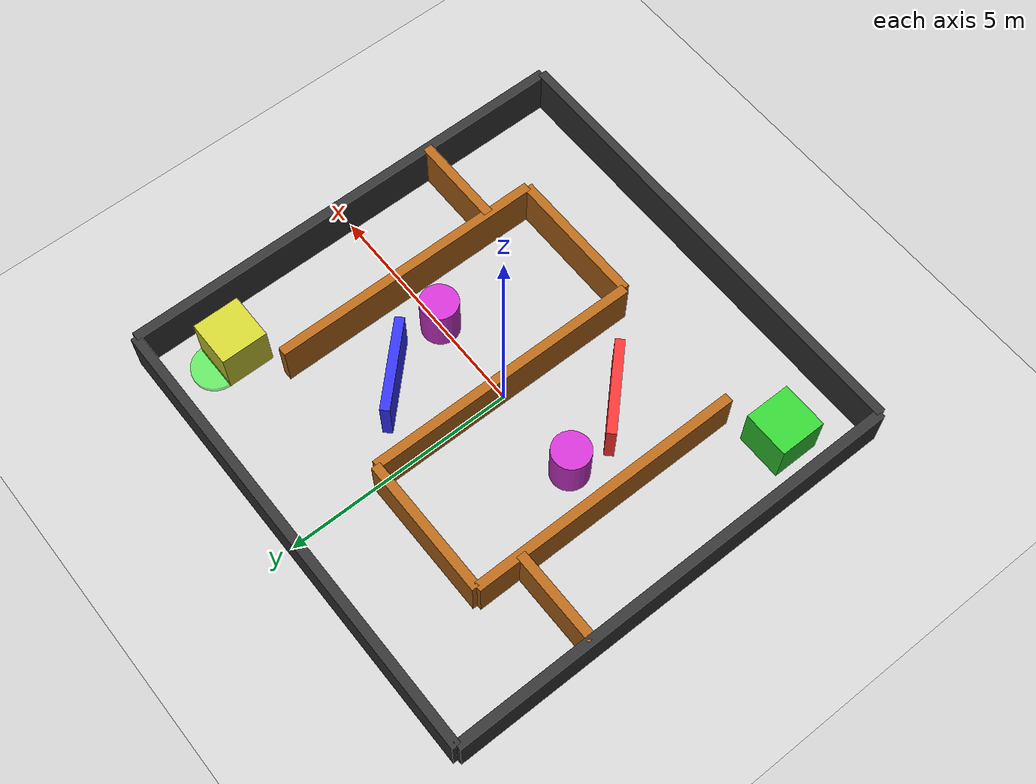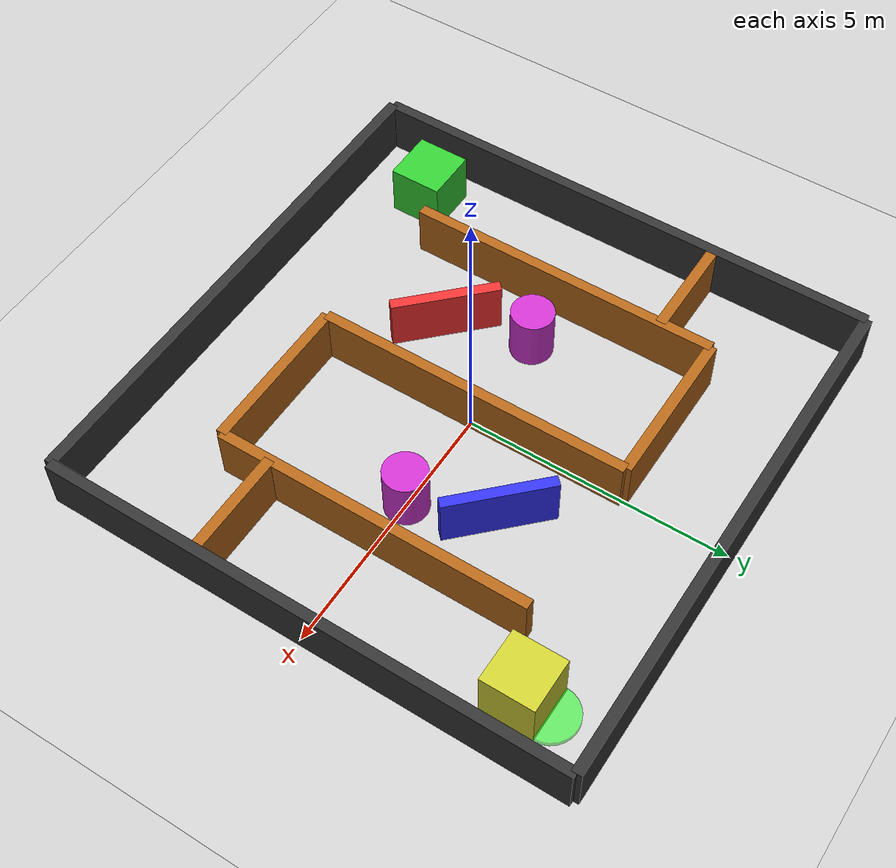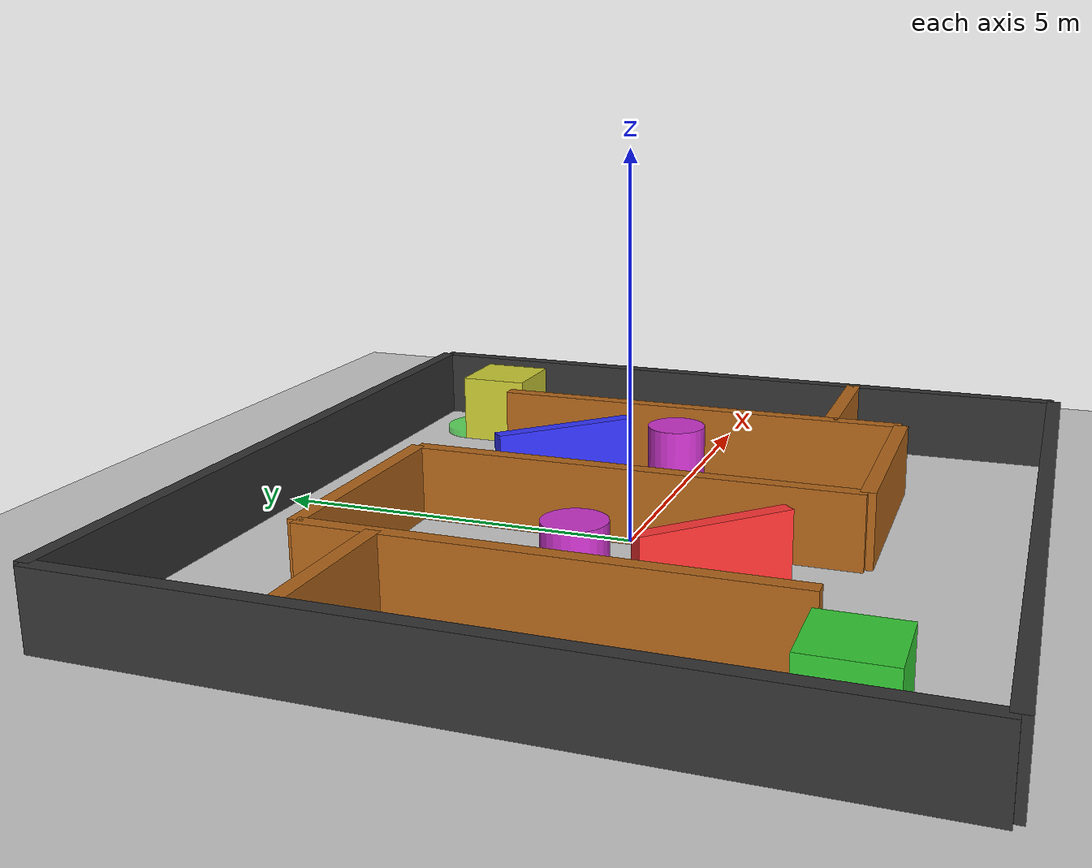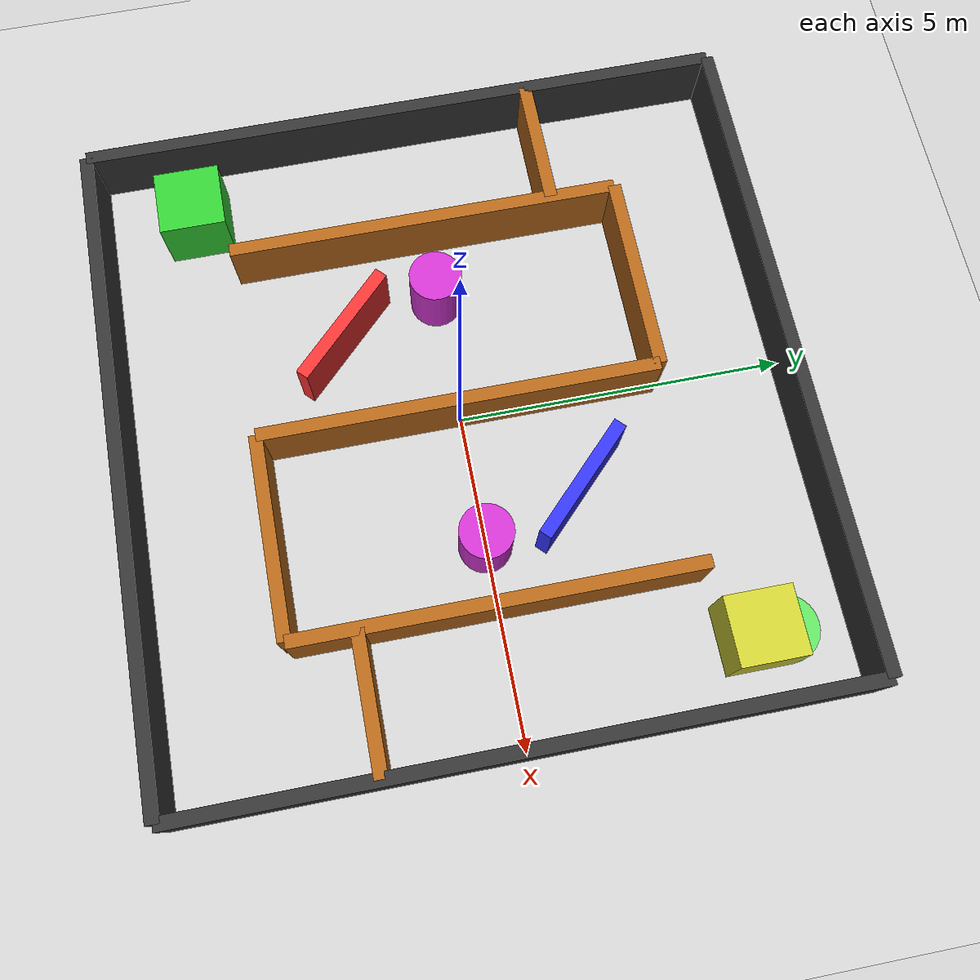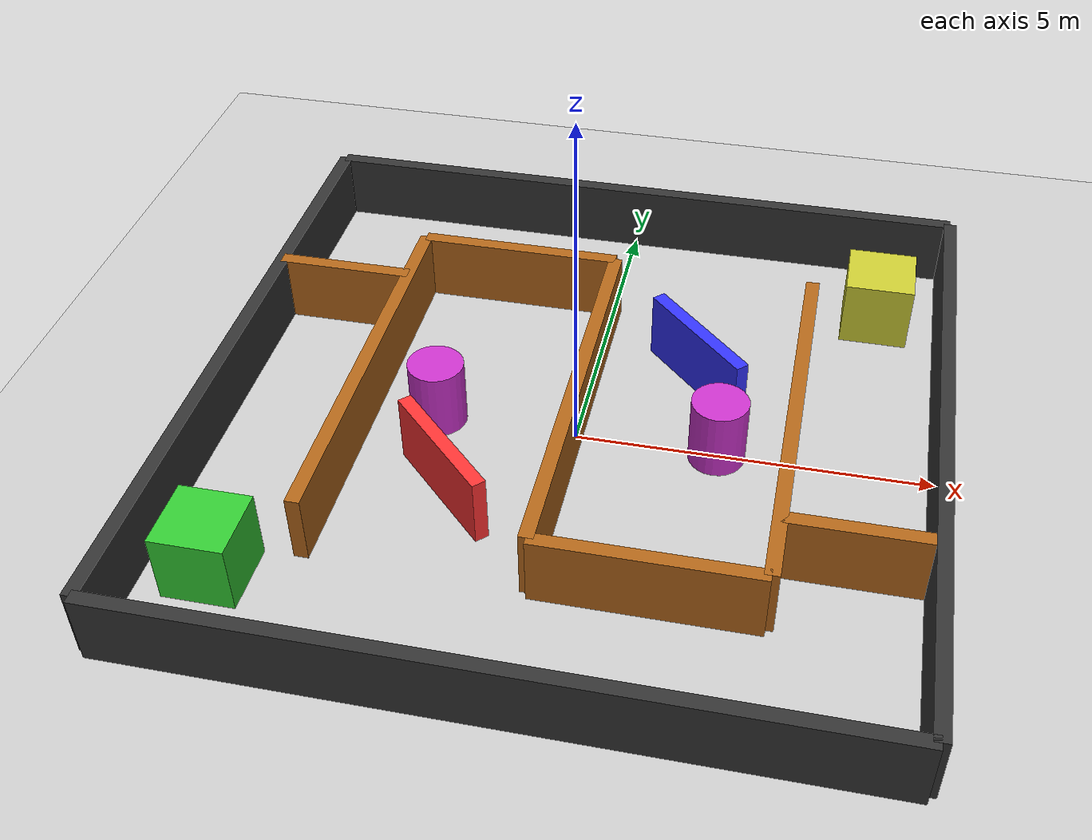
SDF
<?xml version="1.0"?>
<sdf version="1.6">
  <world name="maze_world">
    <include>
      <uri>model://sun</uri>
    </include>
    <include>
      <uri>model://ground_plane</uri>
    </include>

    <!-- Outer walls -->
    <model name="wall1">
      <static>true</static>
      <pose>0 5 0.5 0 0 0</pose>
      <link name="link">
        <collision name="collision">
          <geometry>
            <box>
              <size>10 0.2 1</size>
            </box>
          </geometry>
        </collision>
        <visual name="visual">
          <geometry>
            <box>
              <size>10 0.2 1</size>
            </box>
          </geometry>
          <material>
            <ambient>0.2 0.2 0.2 1.0</ambient>
            <diffuse>0.2 0.2 0.2 1.0</diffuse>
          </material>
        </visual>
      </link>
    </model>

    <model name="wall2">
      <static>true</static>
      <pose>0 -5 0.5 0 0 0</pose>
      <link name="link">
        <collision name="collision">
          <geometry>
            <box>
              <size>10 0.2 1</size>
            </box>
          </geometry>
        </collision>
        <visual name="visual">
          <geometry>
            <box>
              <size>10 0.2 1</size>
            </box>
          </geometry>
          <material>
            <ambient>0.2 0.2 0.2 1.0</ambient>
            <diffuse>0.2 0.2 0.2 1.0</diffuse>
          </material>
        </visual>
      </link>
    </model>

    <model name="wall3">
      <static>true</static>
      <pose>5 0 0.5 0 0 1.5708</pose>
      <link name="link">
        <collision name="collision">
          <geometry>
            <box>
              <size>10 0.2 1</size>
            </box>
          </geometry>
        </collision>
        <visual name="visual">
          <geometry>
            <box>
              <size>10 0.2 1</size>
            </box>
          </geometry>
          <material>
            <ambient>0.2 0.2 0.2 1.0</ambient>
            <diffuse>0.2 0.2 0.2 1.0</diffuse>
          </material>
        </visual>
      </link>
    </model>

    <model name="wall4">
      <static>true</static>
      <pose>-5 0 0.5 0 0 1.5708</pose>
      <link name="link">
        <collision name="collision">
          <geometry>
            <box>
              <size>10 0.2 1</size>
            </box>
          </geometry>
        </collision>
        <visual name="visual">
          <geometry>
            <box>
              <size>10 0.2 1</size>
            </box>
          </geometry>
          <material>
            <ambient>0.2 0.2 0.2 1.0</ambient>
            <diffuse>0.2 0.2 0.2 1.0</diffuse>
          </material>
        </visual>
      </link>
    </model>

    <!-- Main maze structure -->
    <!-- Vertical walls -->
    <model name="maze_wall1">
      <static>true</static>
      <pose>-3 0 0.5 0 0 0</pose>
      <link name="link">
        <collision name="collision">
          <geometry>
            <box>
              <size>0.2 6 1</size>
            </box>
          </geometry>
        </collision>
        <visual name="visual">
          <geometry>
            <box>
              <size>0.2 6 1</size>
            </box>
          </geometry>
          <material>
            <ambient>0.7 0.4 0.1 1.0</ambient>
            <diffuse>0.7 0.4 0.1 1.0</diffuse>
          </material>
        </visual>
      </link>
    </model>

    <model name="maze_wall2">
      <static>true</static>
      <pose>0 0 0.5 0 0 0</pose>
      <link name="link">
        <collision name="collision">
          <geometry>
            <box>
              <size>0.2 6 1</size>
            </box>
          </geometry>
        </collision>
        <visual name="visual">
          <geometry>
            <box>
              <size>0.2 6 1</size>
            </box>
          </geometry>
          <material>
            <ambient>0.7 0.4 0.1 1.0</ambient>
            <diffuse>0.7 0.4 0.1 1.0</diffuse>
          </material>
        </visual>
      </link>
    </model>

    <model name="maze_wall3">
      <static>true</static>
      <pose>3 0 0.5 0 0 0</pose>
      <link name="link">
        <collision name="collision">
          <geometry>
            <box>
              <size>0.2 6 1</size>
            </box>
          </geometry>
        </collision>
        <visual name="visual">
          <geometry>
            <box>
              <size>0.2 6 1</size>
            </box>
          </geometry>
          <material>
            <ambient>0.7 0.4 0.1 1.0</ambient>
            <diffuse>0.7 0.4 0.1 1.0</diffuse>
          </material>
        </visual>
      </link>
    </model>

    <!-- Horizontal walls with gaps -->
    <model name="maze_wall4">
      <static>true</static>
      <pose>-1.5 3 0.5 0 0 1.5708</pose>
      <link name="link">
        <collision name="collision">
          <geometry>
            <box>
              <size>0.2 3 1</size>
            </box>
          </geometry>
        </collision>
        <visual name="visual">
          <geometry>
            <box>
              <size>0.2 3 1</size>
            </box>
          </geometry>
          <material>
            <ambient>0.7 0.4 0.1 1.0</ambient>
            <diffuse>0.7 0.4 0.1 1.0</diffuse>
          </material>
        </visual>
      </link>
    </model>

    <model name="maze_wall5">
      <static>true</static>
      <pose>1.5 -3 0.5 0 0 1.5708</pose>
      <link name="link">
        <collision name="collision">
          <geometry>
            <box>
              <size>0.2 3 1</size>
            </box>
          </geometry>
        </collision>
        <visual name="visual">
          <geometry>
            <box>
              <size>0.2 3 1</size>
            </box>
          </geometry>
          <material>
            <ambient>0.7 0.4 0.1 1.0</ambient>
            <diffuse>0.7 0.4 0.1 1.0</diffuse>
          </material>
        </visual>
      </link>
    </model>

    <model name="maze_wall6">
      <static>true</static>
      <pose>-4 2 0.5 0 0 1.5708</pose>
      <link name="link">
        <collision name="collision">
          <geometry>
            <box>
              <size>0.2 2 1</size>
            </box>
          </geometry>
        </collision>
        <visual name="visual">
          <geometry>
            <box>
              <size>0.2 2 1</size>
            </box>
          </geometry>
          <material>
            <ambient>0.7 0.4 0.1 1.0</ambient>
            <diffuse>0.7 0.4 0.1 1.0</diffuse>
          </material>
        </visual>
      </link>
    </model>

    <model name="maze_wall7">
      <static>true</static>
      <pose>4 -2 0.5 0 0 1.5708</pose>
      <link name="link">
        <collision name="collision">
          <geometry>
            <box>
              <size>0.2 2 1</size>
            </box>
          </geometry>
        </collision>
        <visual name="visual">
          <geometry>
            <box>
              <size>0.2 2 1</size>
            </box>
          </geometry>
          <material>
            <ambient>0.7 0.4 0.1 1.0</ambient>
            <diffuse>0.7 0.4 0.1 1.0</diffuse>
          </material>
        </visual>
      </link>
    </model>

    <!-- Diagonal obstacles -->
    <model name="obstacle1">
      <static>true</static>
      <pose>-1.5 -1.5 0.5 0 0 0.78539</pose> <!-- 45 degrees rotation -->
      <link name="link">
        <collision name="collision">
          <geometry>
            <box>
              <size>0.2 2.0 1</size>
            </box>
          </geometry>
        </collision>
        <visual name="visual">
          <geometry>
            <box>
              <size>0.2 2.0 1</size>
            </box>
          </geometry>
          <material>
            <ambient>1.0 0.2 0.2 1.0</ambient>
            <diffuse>1.0 0.2 0.2 1.0</diffuse>
          </material>
        </visual>
      </link>
    </model>

    <model name="obstacle2">
      <static>true</static>
      <pose>1.5 1.5 0.5 0 0 0.78539</pose> <!-- 45 degrees rotation -->
      <link name="link">
        <collision name="collision">
          <geometry>
            <box>
              <size>0.2 2.0 1</size>
            </box>
          </geometry>
        </collision>
        <visual name="visual">
          <geometry>
            <box>
              <size>0.2 2.0 1</size>
            </box>
          </geometry>
          <material>
            <ambient>0.2 0.2 1.0 1.0</ambient>
            <diffuse>0.2 0.2 1.0 1.0</diffuse>
          </material>
        </visual>
      </link>
    </model>

    <!-- Block obstacles -->
    <model name="block1">
      <static>true</static>
      <pose>-4 -3.5 0.5 0 0 0</pose>
      <link name="link">
        <collision name="collision">
          <geometry>
            <box>
              <size>1 1 1</size>
            </box>
          </geometry>
        </collision>
        <visual name="visual">
          <geometry>
            <box>
              <size>1 1 1</size>
            </box>
          </geometry>
          <material>
            <ambient>0.2 0.8 0.2 1.0</ambient>
            <diffuse>0.2 0.8 0.2 1.0</diffuse>
          </material>
        </visual>
      </link>
    </model>

    <model name="block2">
      <static>true</static>
      <pose>4 3.5 0.5 0 0 0</pose>
      <link name="link">
        <collision name="collision">
          <geometry>
            <box>
              <size>1 1 1</size>
            </box>
          </geometry>
        </collision>
        <visual name="visual">
          <geometry>
            <box>
              <size>1 1 1</size>
            </box>
          </geometry>
          <material>
            <ambient>0.8 0.8 0.2 1.0</ambient>
            <diffuse>0.8 0.8 0.2 1.0</diffuse>
          </material>
        </visual>
      </link>
    </model>

    <!-- Circular obstacles -->
    <model name="cylinder1">
      <static>true</static>
      <pose>-2 0 0.5 0 0 0</pose>
      <link name="link">
        <collision name="collision">
          <geometry>
            <cylinder>
              <radius>0.4</radius>
              <length>1</length>
            </cylinder>
          </geometry>
        </collision>
        <visual name="visual">
          <geometry>
            <cylinder>
              <radius>0.4</radius>
              <length>1</length>
            </cylinder>
          </geometry>
          <material>
            <ambient>0.8 0.2 0.8 1.0</ambient>
            <diffuse>0.8 0.2 0.8 1.0</diffuse>
          </material>
        </visual>
      </link>
    </model>

    <model name="cylinder2">
      <static>true</static>
      <pose>2 0 0.5 0 0 0</pose>
      <link name="link">
        <collision name="collision">
          <geometry>
            <cylinder>
              <radius>0.4</radius>
              <length>1</length>
            </cylinder>
          </geometry>
        </collision>
        <visual name="visual">
          <geometry>
            <cylinder>
              <radius>0.4</radius>
              <length>1</length>
            </cylinder>
          </geometry>
          <material>
            <ambient>0.8 0.2 0.8 1.0</ambient>
            <diffuse>0.8 0.2 0.8 1.0</diffuse>
          </material>
        </visual>
      </link>
    </model>

    <!-- Goal marker -->
    <model name="goal_marker">
      <static>true</static>
      <pose>4 4 0.05 0 0 0</pose>
      <link name="link">
        <visual name="visual">
          <geometry>
            <cylinder>
              <radius>0.5</radius>
              <length>0.1</length>
            </cylinder>
          </geometry>
          <material>
            <ambient>0.0 1.0 0.0 0.5</ambient>
            <diffuse>0.0 1.0 0.0 0.5</diffuse>
            <emissive>0.0 0.5 0.0 0.5</emissive>
          </material>
        </visual>
      </link>
    </model>

  </world>
</sdf>
